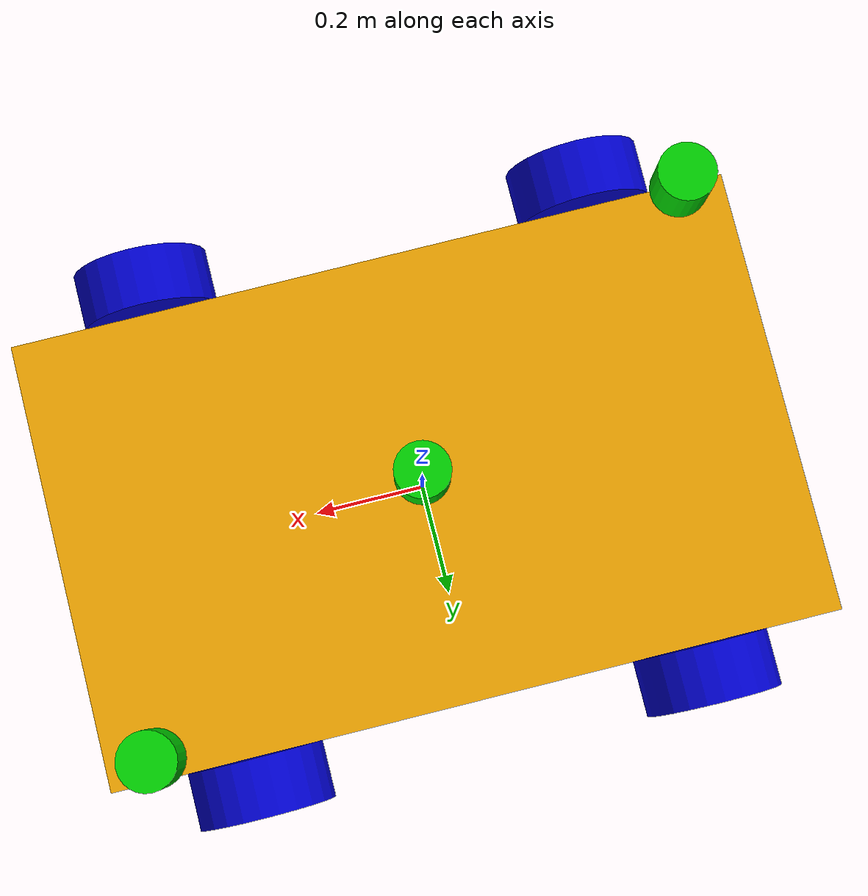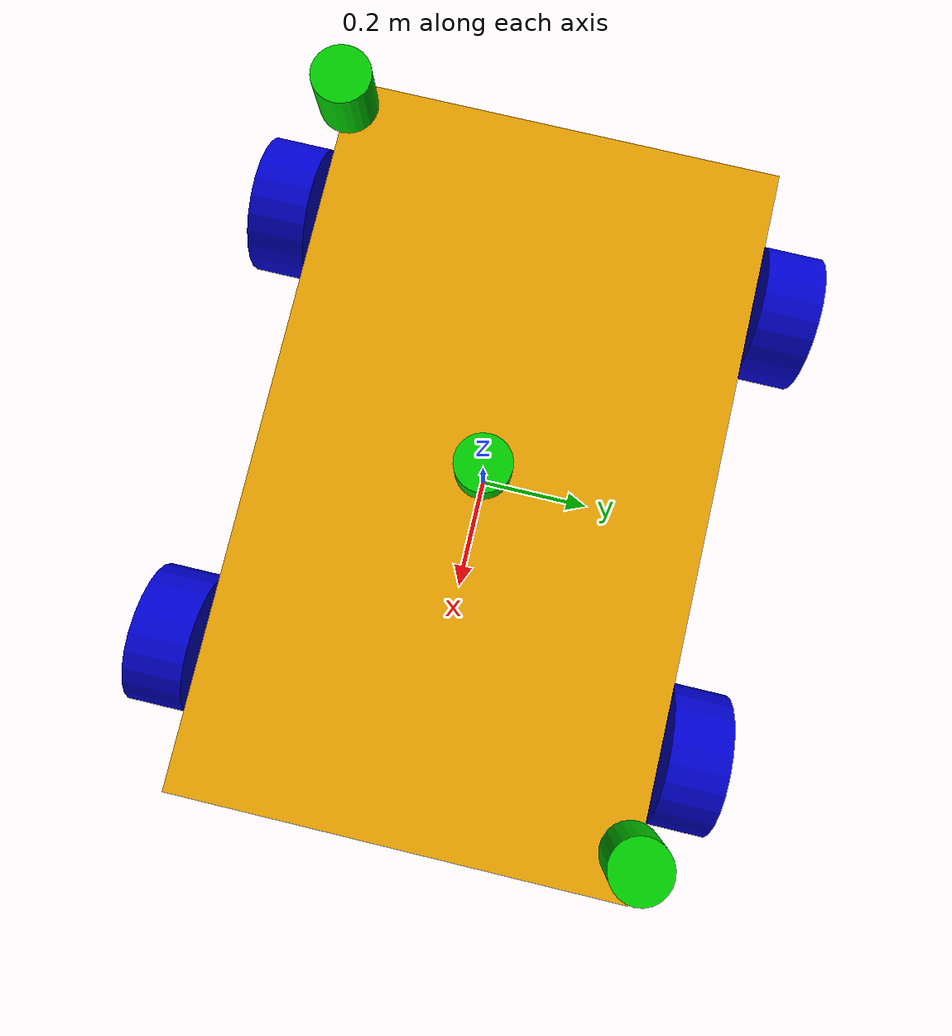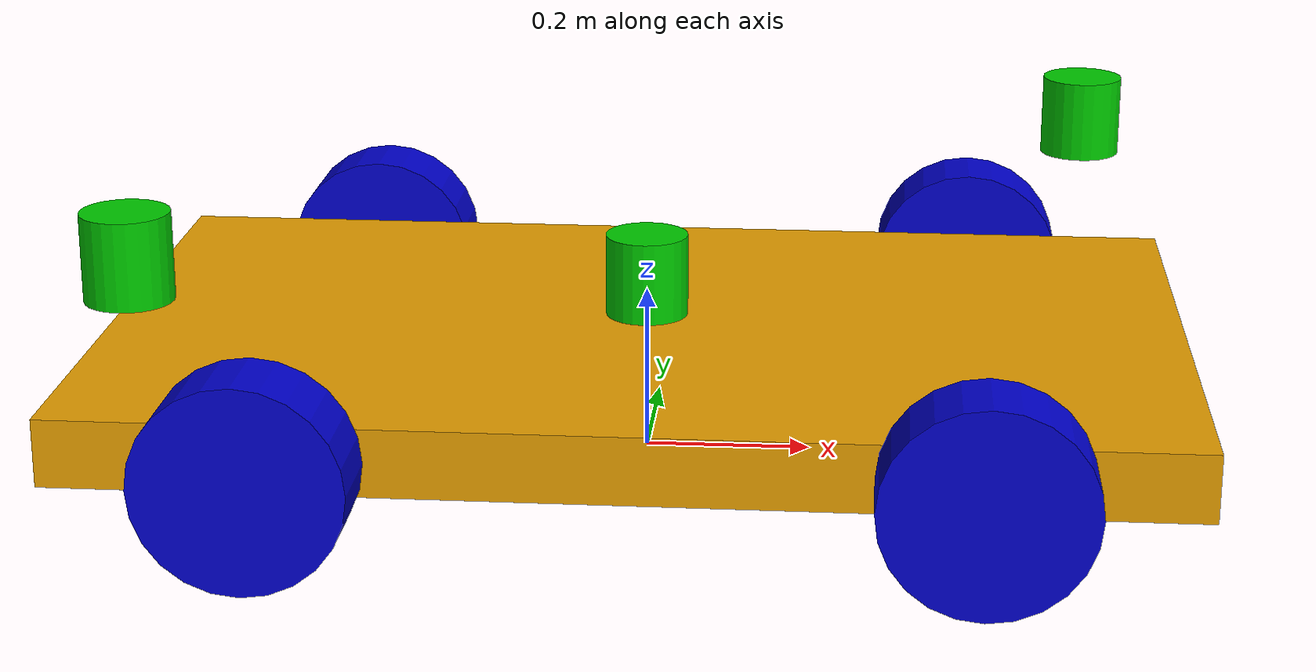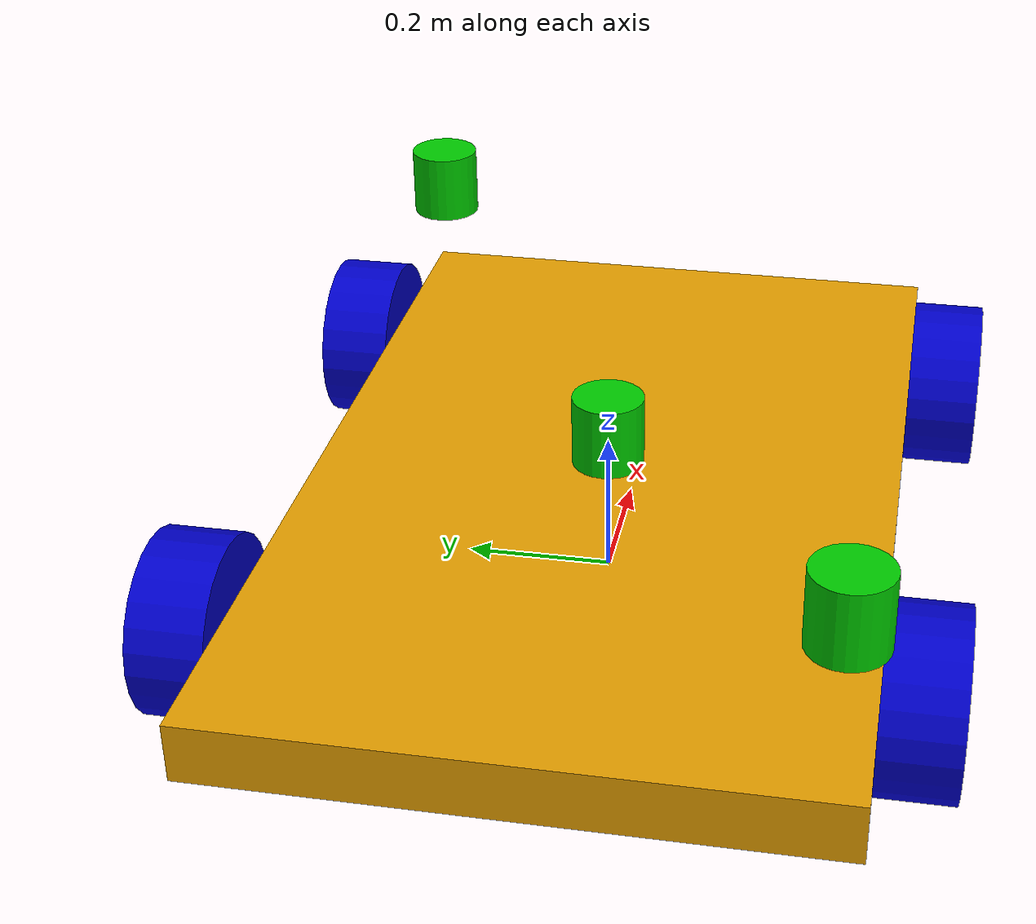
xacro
<?xml version="1.0"?>
<robot xmlns:xacro="http://www.ros.org/wiki/xacro" name="yun">

        <!-- gazebo -->
        <!--xacro:include filename="$(find antbot_description)/urdf/antbot.gazebo"/-->
        <xacro:property name="body_width"   value=".8"/>
        <xacro:property name="body_length"  value="1.3"/>
        <xacro:property name="body_height"  value=".08"/>
        <xacro:property name="wheel_length" value=".1"/>
        <xacro:property name="wheel_radius" value=".12"/>
        <xacro:property name="wheel_color"  value="0 0 .8 1"/>

<!--base_link-->
        <link name="base_link">
				<inertial>
					<origin xyz="0 0 0" />
					<mass value="100.0" />
					<inertia  ixx="1.0" ixy="0.0"  ixz="0.0"  iyy="1.0"  iyz="0.0"  izz="100.0" />
				</inertial>
                <visual>
                        <geometry>
                                <box size="${body_length} ${body_width} ${body_height}"/>
                        </geometry>
                        <origin xyz="0 0 ${wheel_radius}"/>
                </visual>
                <collision>
                        <geometry>
                                <box size="${body_length} ${body_width} ${body_height}"/>
                        </geometry>
                        <origin xyz="0 0 ${wheel_radius}"/>
                </collision>
        </link>
<!--base_laser_link_1-->
        <link name="base_laser_link_1">
				<inertial>
					<origin xyz="0 0 0" />
					<mass value="0.1" />
					<inertia  ixx="1.0" ixy="0.0"  ixz="0.0"  iyy="1.0"  iyz="0.0"  izz="10.0" />
				</inertial>
                <visual>
                        <geometry>
                                <cylinder length="0.1" radius="0.05"/>
                        </geometry>
                        <material name="green">
                                <color rgba="0 0.8 0 1"/>
                        </material>
                        <origin xyz="0 0 0.10"/>
                </visual>
                <collision>
                        <geometry>
                                <cylinder length="0.1" radius="0.05"/>
                        </geometry>
                        <origin xyz="0 0 0.10"/>
                </collision>
        </link>
        <joint name="base_laser_link_1_to_multi_lidar_link" type="fixed">
            <parent link="multi_lidar_link"/>
            <child link="base_laser_link_1"/>
            <origin xyz="0.54 0.36 ${wheel_radius}" rpy="0 0 0.785"/>
        </joint>
<!--base_laser_link_0-->
        <link name="base_laser_link_0">
				<inertial>
					<origin xyz="0 0 0" />
					<mass value="0.1" />
					<inertia  ixx="1.0" ixy="0.0"  ixz="0.0"  iyy="1.0"  iyz="0.0"  izz="10.0" />
				</inertial>
                <visual>
                        <geometry>
                                <cylinder length="0.1" radius="0.05"/>
                        </geometry>
                        <material name="green">
                                <color rgba="0 0.8 0 1"/>
                        </material>
                        <origin xyz="0 0 0.10"/>
                </visual>
                <collision>
                        <geometry>
                                <cylinder length="0.1" radius="0.05"/>
                        </geometry>
                        <origin xyz="0 0 0.10"/>
                </collision>
        </link>
        <joint name="base_laser_link_0_to_multi_lidar_link" type="fixed">
            <parent link="multi_lidar_link"/>
            <child link="base_laser_link_0"/>
            <origin xyz="-0.54 -0.36 ${wheel_radius}" rpy="0 0 -2.355"/>
        </joint>

<!--multi_lidar_link-->
        <link name="multi_lidar_link">
				<inertial>
					<origin xyz="0 0 0" />
					<mass value="0.1" />
					<inertia  ixx="1.0" ixy="0.0"  ixz="0.0"  iyy="1.0"  iyz="0.0"  izz="10.0" />
				</inertial>
                <visual>
                        <geometry>
                                <cylinder length="0.1" radius="0.05"/>
                        </geometry>
                        <material name="green">
                                <color rgba="0 0.8 0 1"/>
                        </material>
                        <origin xyz="0 0 0.10"/>
                </visual>
                <collision>
                        <geometry>
                                <cylinder length="0.1" radius="0.05"/>
                        </geometry>
                        <origin xyz="0 0 0.10"/>
                </collision>
        </link>
        <joint name="multi_lidar_link_to_base_link" type="fixed">
            <parent link="base_link"/>
            <child link="multi_lidar_link"/>
            <origin xyz="0.0 0.0 ${wheel_radius}"/>
        </joint>

<!-- front left wheel-->
        <link name="front_left_wheel">
				<inertial>
					<origin xyz="0 0 0" />
					<mass value="10.0" />
					<inertia  ixx="1.0" ixy="0.0"  ixz="0.0"  iyy="100.0"  iyz="0.0"  izz="1.0" />
				</inertial>
                <visual>
                        <geometry>
                                <cylinder length="${wheel_length}" radius="${wheel_radius}"/>
                        </geometry>
                        <material name="blue">
                                <color rgba="${wheel_color}"/>
                        </material>
                        <origin rpy="1.57075 0 0" xyz="0 0.05 0"/>
                </visual>
        </link>
        <joint name="front_left_wheel_to_base_link" type="continuous">
                <parent link="base_link"/>
                <child link="rear_left_wheel"/>
                <origin xyz="-${body_width/2} ${body_width/2} ${wheel_radius}"/>
                <axis xyz="0 1 0"/>
        </joint>
<!-- front right wheel-->
        <link name="front_right_wheel">
				<inertial>
					<origin xyz="0 0 0" />
					<mass value="10.0" />
					<inertia  ixx="1.0" ixy="0.0"  ixz="0.0"  iyy="100.0"  iyz="0.0"  izz="1.0" />
				</inertial>
                <visual>
                        <geometry>
                                <cylinder length="${wheel_length}" radius="${wheel_radius}"/>
                        </geometry>
                        <material name="blue">
                                <color rgba="${wheel_color}"/>
                        </material>
                        <origin rpy="1.57075 0 0" xyz="0 -0.05 0"/>
                </visual>
        </link>
        <joint name="front_right_wheel_to_base_link" type="continuous">
                <parent link="base_link"/>
                <child link="rear_right_wheel"/>
                <origin xyz="-${body_width/2} -${body_width/2} ${wheel_radius}"/>
                <axis xyz="0 1 0"/>
        </joint>

<!-- rear left wheel-->
        <link name="rear_left_wheel">
				<inertial>
					<origin xyz="0 0 0" />
					<mass value="10.0" />
					<inertia  ixx="1.0" ixy="0.0"  ixz="0.0"  iyy="100.0"  iyz="0.0"  izz="1.0" />
				</inertial>
                <visual>
                        <geometry>
                                <cylinder length="${wheel_length}" radius="${wheel_radius}"/>
                        </geometry>
                        <material name="blue">
                                <color rgba="${wheel_color}"/>
                        </material>
                        <origin rpy="1.57075 0 0" xyz="0 0.05 0"/>
                </visual>
        </link>
        <joint name="rear_left_wheel_to_base_link" type="continuous">
                <parent link="base_link"/>
                <child link="front_left_wheel"/>
                <origin xyz="${body_width/2} ${body_width/2} ${wheel_radius}"/>
                <axis xyz="0 1 0"/>
        </joint>
<!-- rear right wheel-->
        <link name="rear_right_wheel">
				<inertial>
					<origin xyz="0 0 0" />
					<mass value="10.0" />
					<inertia  ixx="1.0" ixy="0.0"  ixz="0.0"  iyy="100.0"  iyz="0.0"  izz="1.0" />
				</inertial>
                <visual>
                        <geometry>
                                <cylinder length="${wheel_length}" radius="${wheel_radius}"/>
                        </geometry>
                        <material name="blue">
                                <color rgba="${wheel_color}"/>
                        </material>
                        <origin rpy="1.57075 0 0" xyz="0 -0.05 0"/>
                </visual>
        </link>
        <joint name="rear_right_wheel_to_base_link" type="continuous">
                <parent link="base_link"/>
                <child link="front_right_wheel"/>
                <origin xyz="${body_width/2} -${body_width/2} ${wheel_radius}"/>
                <axis xyz="0 1 0"/>
        </joint>

</robot>
